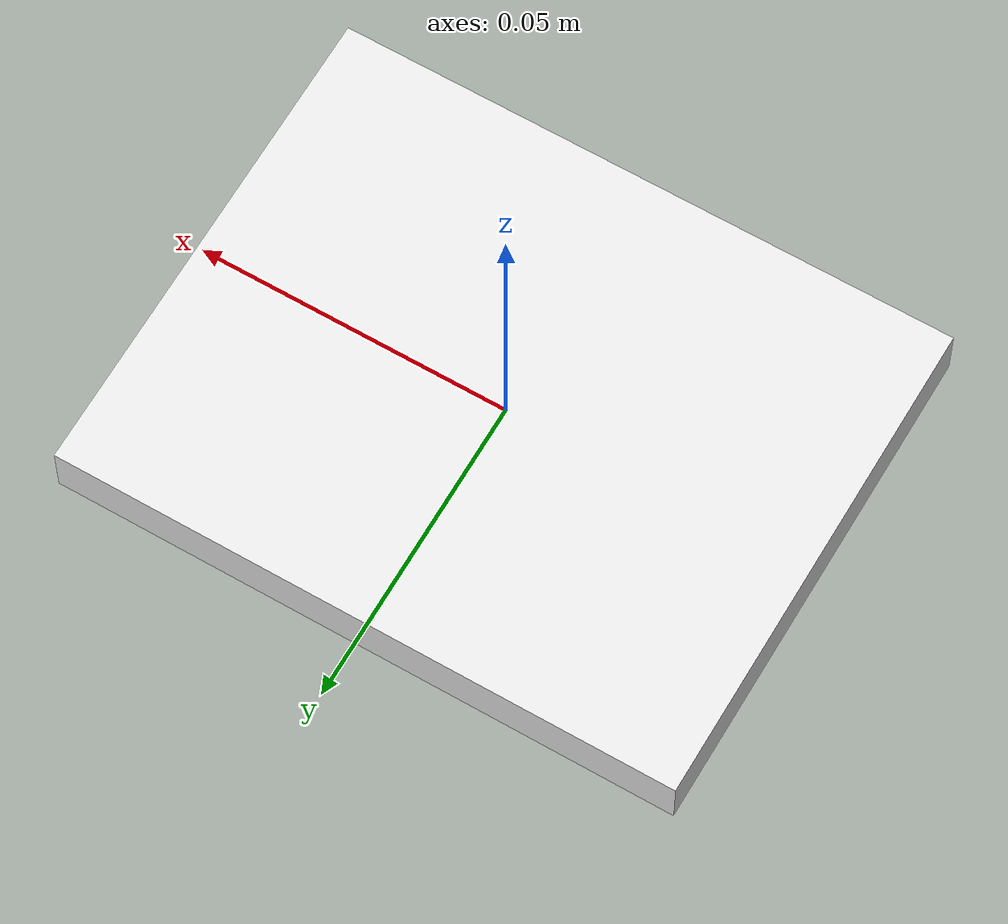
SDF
<?xml version="1.0"?>
<sdf version="1.7">

  <!-- Note:
       This file defines the model for a box.
  -->
  <model name="plate">
    <!-- The model for a solid box of uniform density. -->
    <link name="box">
      <inertial>
        <mass>0.2</mass>
        <inertia>
          <ixx>0</ixx>
          <ixy>0</ixy>
          <ixz>0</ixz>
          <iyy>0</iyy>
          <iyz>0</iyz>
          <izz>0</izz>
        </inertia>
      </inertial>

      <visual name="box_visual">
        <geometry>
          <box>
            <size>0.099 0.079 0.009</size>
          </box>
        </geometry>
        <material>
          <diffuse>0.9 0.9 0.9 0.9</diffuse>
        </material>
      </visual>

      <collision name="collision">
        <geometry>
          <box>
            <size>0.099 0.079 0.009</size>
          </box>
        </geometry>
        <surface>
          <friction>
            <ode>
              <mu>0.5</mu>
              <mu2>0.5</mu2>
            </ode>
          </friction>
        </surface>
      </collision>
    </link>
  </model>
</sdf>
